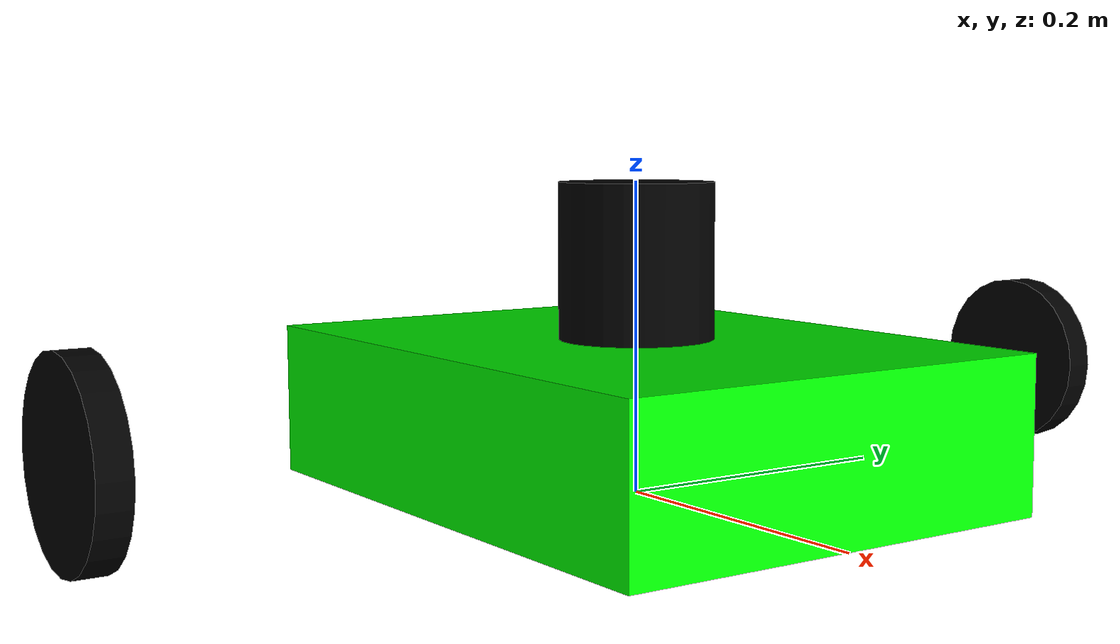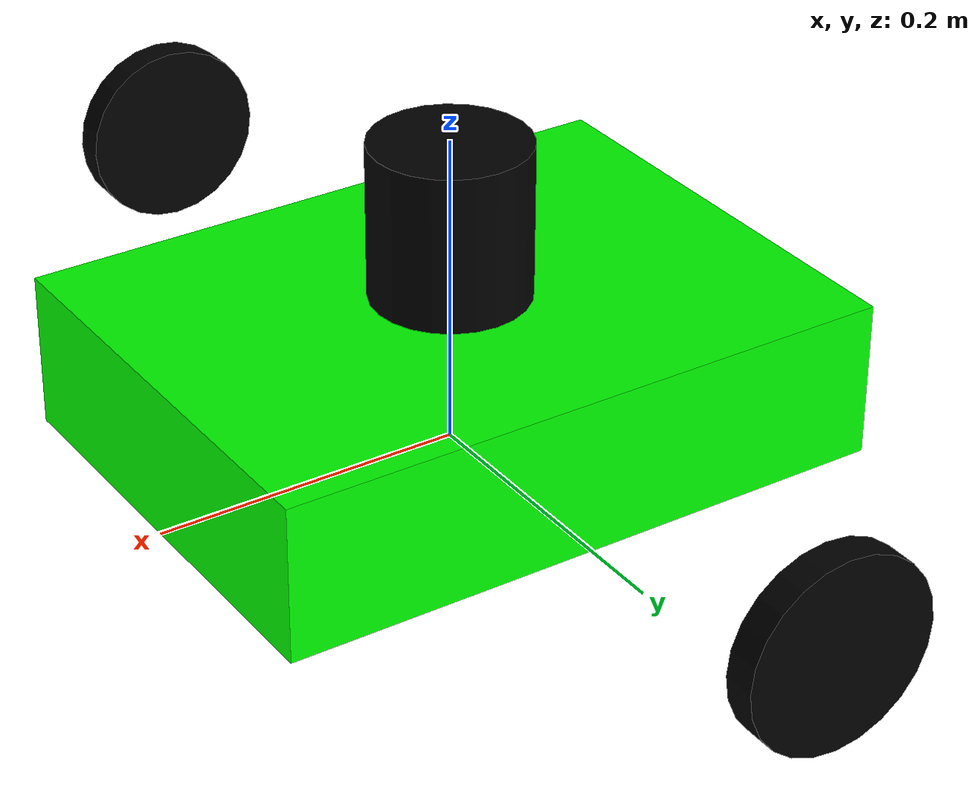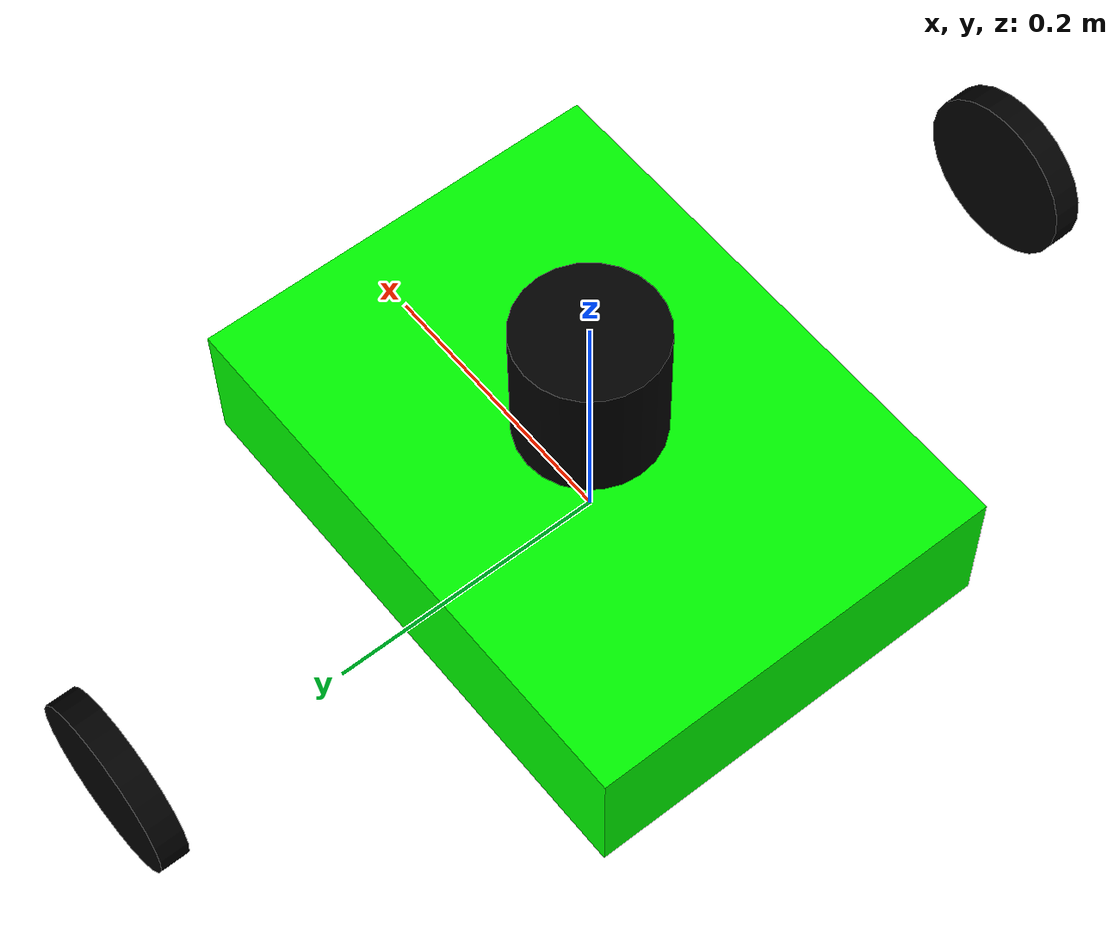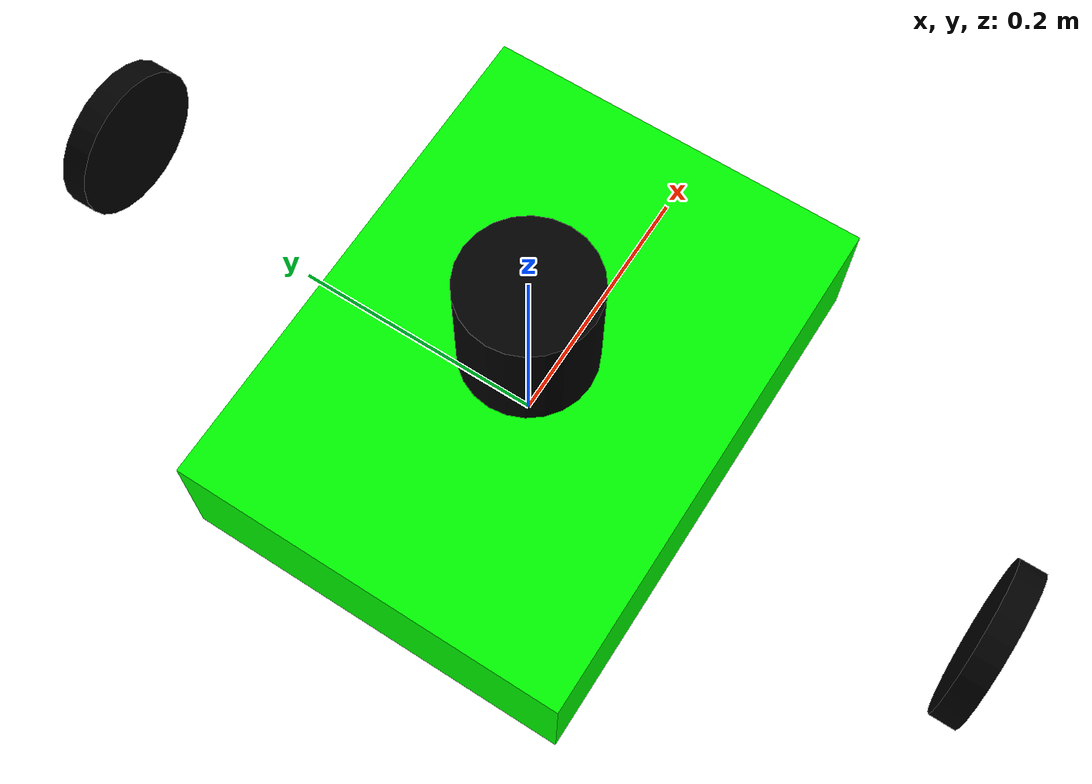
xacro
<?xml version="1.0"?>
<robot xmlns:xacro="http://ros.org/wiki/xacro" name="my_robot">

  <!-- Base link -->
  <link name="base_link">
    <visual>
      <geometry>
        <box size="0.4 0.3 0.1"/>
      </geometry>
      <origin xyz="0 0 0.05" rpy="0 0 0"/>
      <material name="green">
        <color rgba="0 1.0 0 1"/>
      </material>
    </visual>
    <collision>
      <geometry>
        <box size="0.4 0.3 0.1"/>
      </geometry>
    </collision>
    <inertial>
      <mass value="1.0"/>
      <inertia ixx="0.01" ixy="0.0" ixz="0.0"
               iyy="0.01" iyz="0.0"
               izz="0.01"/>
    </inertial>
  </link>

  <!-- Left wheel -->
  <link name="left_wheel">
    <visual>
      <geometry>
        <cylinder radius="0.06" length="0.02"/>
      </geometry>
      <origin xyz="0 0.18 0.03" rpy="1.5708 0 0"/>
      <material name="black">
        <color rgba="0 0 0 1"/>
      </material>
    </visual>
    <collision>
      <geometry>
        <cylinder radius="0.06" length="0.02"/>
      </geometry>
      <origin xyz="0 0 0" rpy="1.5708 0 0"/>
    </collision>
    <inertial>
      <mass value="0.2"/>
      <inertia ixx="0.001" ixy="0.0" ixz="0.0"
               iyy="0.001" iyz="0.0"
               izz="0.001"/>
    </inertial>
  </link>

  <!-- Right wheel -->
  <link name="right_wheel">
    <visual>
      <geometry>
        <cylinder radius="0.06" length="0.02"/>
      </geometry>
      <origin xyz="0 -0.18 0.03" rpy="1.5708 0 0"/>
      <material name="black">
        <color rgba="0 0 0 1"/>
      </material>
    </visual>
    <collision>
      <geometry>
        <cylinder radius="0.06" length="0.02"/>
      </geometry>
      <origin xyz="0 0 0" rpy="1.5708 0 0"/>
    </collision>
    <inertial>
      <mass value="0.2"/>
      <inertia ixx="0.001" ixy="0.0" ixz="0.0"
               iyy="0.001" iyz="0.0"
               izz="0.001"/>
    </inertial>
  </link>

  <!-- Left wheel joint -->
  <joint name="left_wheel_joint" type="continuous">
    <parent link="base_link"/>
    <child link="left_wheel"/>
    <origin xyz="0 0.18 0.03" rpy="0 0 0"/>
    <axis xyz="0 1 0"/>
  </joint>

  <!-- Right wheel joint -->
  <joint name="right_wheel_joint" type="continuous">
    <parent link="base_link"/>
    <child link="right_wheel"/>
    <origin xyz="0 -0.18 0.03" rpy="0 0 0"/>
    <axis xyz="0 1 0"/>
  </joint>

  <!-- LIDAR joint -->
  <joint name="lidar_joint" type="fixed">
    <parent link="base_link"/>
    <child link="lidar_link"/>
    <origin xyz="0 0 0.1" rpy="0 0 0"/>
  </joint>

  <!-- LIDAR link -->
  <link name="lidar_link">
    <visual>
      <geometry>
        <cylinder radius="0.05" length="0.1"/>
      </geometry>
      <origin xyz="0 0 0.05" rpy="0 0 0"/>
      <material name="black">
        <color rgba="0 0 0 1"/>
      </material>
    </visual>
  </link>

  <!-- Gazebo sensor plugin for LIDAR -->
  <gazebo reference="lidar_link">
    <sensor name="laser" type="gpu_ray">
      <pose>0 0 0 0 0 0</pose>
      <update_rate>30</update_rate>
      <ray>
        <scan>
          <horizontal>
            <samples>640</samples>
            <resolution>1</resolution>
            <min_angle>-1.5708</min_angle>  <!-- -90 degrees -->
            <max_angle>1.5708</max_angle>   <!-- +90 degrees -->
          </horizontal>
        </scan>
        <range>
          <min>0.12</min>
          <max>3.5</max>
          <resolution>0.01</resolution>
        </range>
        <noise>
          <type>gaussian</type>
          <mean>0.0</mean>
          <stddev>0.01</stddev>
        </noise>
      </ray>
      <plugin name="gazebo_ros_laser_controller" filename="libgazebo_ros_gpu_laser.so">
        <topicName>/scan</topicName>
        <frameName>lidar_link</frameName>
      </plugin>
    </sensor>
  </gazebo>

  <!-- ros2_control, transmissions, etc. (unchanged) -->

</robot>
